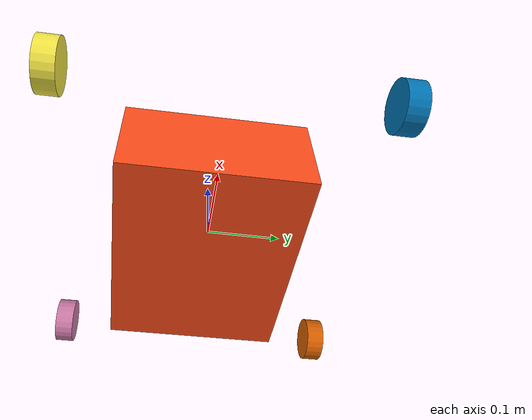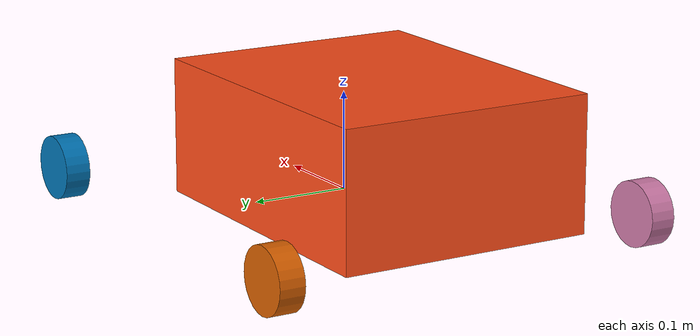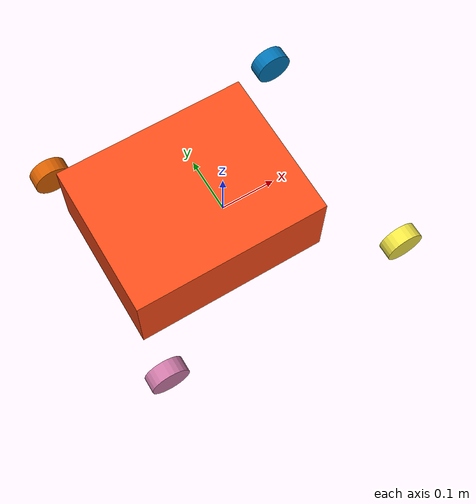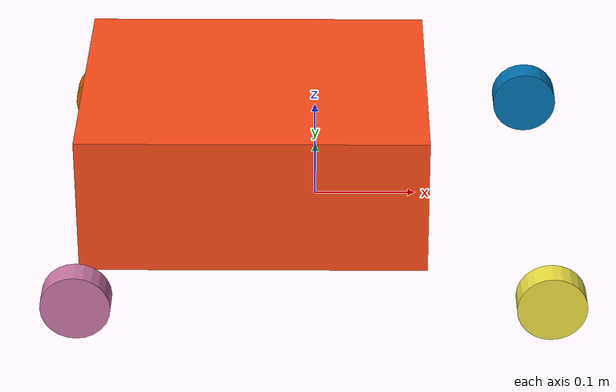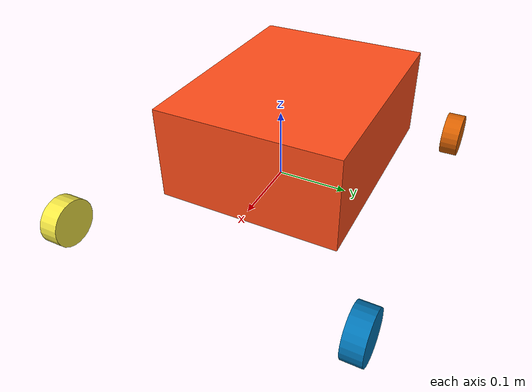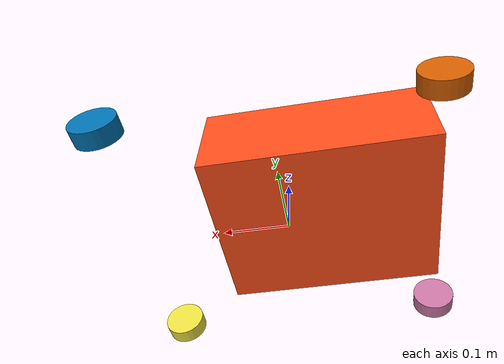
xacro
<?xml version="1.0"?>
<robot xmlns:xacro="http://www.ros.org/wiki/xacro"  name="robot">

    <xacro:property name="chassis_length" value="0.335"/>
    <xacro:property name="chassis_width" value="0.265"/>
    <xacro:property name="chassis_height" value="0.138"/>
    <xacro:property name="chassis_mass" value="1.0"/>

      <!-- Wheel parameters -->
      <xacro:property name="wheel_offset_x" value="0.226"/>
      <xacro:property name="wheel_offset_y" value="0.1485"/>
      <xacro:property name="wheel_offset_z" value="0.01"/>

      <!-- Constants -->
      <xacro:property name="PI" value="3.1415926535897931" />
      <xacro:property name="wheel_radius" value="0.033"/>
      <xacro:property name="wheel_height" value="0.026"/>
      <xacro:property name="wheel_mass" value="0.05"/>
      <!-- Simple Macro to calculate inertia -->
      <xacro:macro name="cylinder_inertia" params="m r h">
          <inertia  ixx="${m*(3*r*r+h*h)/12}" ixy = "0" ixz = "0"
                  iyy="${m*r*r/2}" iyz = "0"
                  izz="${m*(3*r*r+h*h)/12}" />
      </xacro:macro>

    <material name="white">
        <color rgba="1 1 1 1" />
    </material>

    <material name="orange">
        <color rgba="1 0.3 0.1 1"/>
    </material>

    <material name="blue">
        <color rgba="0.2 0.2 1 1"/>
    </material>

    <material name="black">
        <color rgba="0 0 0 1"/>
    </material>

    <material name="red">
        <color rgba="1 0 0 1"/>
    </material>

     <!-- BASE LINK -->

     <link name="base_link">

     </link>

     <!-- BASE_FOOTPRINT LINK -->

     <joint name="base_footprint_joint" type="fixed">
         <parent link="base_link"/>
         <child link="base_footprint"/>
         <origin xyz="0 0 0" rpy="0 0 0"/>
     </joint>

     <link name="base_footprint">
     </link>

     <!-- CHASSIS LINK -->

    <joint name="chassis_joint" type="fixed">
        <parent link="base_link"/>
        <child link="chassis"/>
        <origin xyz="${-wheel_offset_x} 0 ${-wheel_offset_z}"/>
    </joint>

    <link name="chassis">
        <visual>
            <origin xyz="${chassis_length/2} 0 ${chassis_height/2}"/>
            <geometry>
                <box size="${chassis_length} ${chassis_width} ${chassis_height}"/>
            </geometry>
            <material name="orange"/>
        </visual>
        <collision>
            <origin xyz="${chassis_length/2} 0 ${chassis_height/2}"/>
            <geometry>
                <box size="${chassis_length} ${chassis_width} ${chassis_height}"/>
            </geometry>
        </collision>

    </link>

    <gazebo reference="chassis">
        <material>Gazebo/Orange</material>
    </gazebo>

     <!-- WHEEL LINK -->

     <xacro:macro name="omni_wheel" params="prefix parent *origin reflect">

    <link name="${prefix}_wheel_link">
      <visual>
            <origin xyz="0 0 0" rpy="${PI/2} 0 0" />
            <geometry>
                <cylinder length="${wheel_height}" radius="${wheel_radius}" />
            </geometry>
      </visual>

      <collision>
				<origin xyz="0 0 0" rpy="${PI/2} 0 0" />
        <geometry>
					<cylinder length="${wheel_height}" radius="${wheel_radius}" />
        </geometry>
      </collision>

      <inertial>
        <mass value="${wheel_mass}" />
        <origin xyz="0 0 0" />
        <cylinder_inertia  m="${wheel_mass}" r="${wheel_radius}" h="${wheel_height}" />
      </inertial>
    </link>

    <joint name="${prefix}_wheel_joint" type="continuous">
      <parent link="${parent}"/>
      <child link="${prefix}_wheel_link"/>
      <xacro:insert_block name="origin" />
      <axis xyz="0 1 0" rpy="0 0 0" />
      <limit effort="100" velocity="100"/>
      <joint_properties damping="0.0" friction="0.0"/>
    </joint>

    <gazebo reference="${prefix}_wheel_link">
		<mu1 value="1.0"/>
		<mu2 value="1.0"/>
		<kp value="10000000.0" />
		<kd value="1.0" />
		<fdir1 value="1 0 0"/>
        <turnGravityOff>false</turnGravityOff>
    </gazebo>

  </xacro:macro>

    <!-- Wheel parameters -->
	<xacro:property name="wheel_offset_x" value="0.2225" />    <!-- x,y,z in translation from base_link to the center of the wheel -->
	<xacro:property name="wheel_offset_y" value="0.2045" />
	<xacro:property name="wheel_offset_z" value="0.0" />

	<xacro:macro name="robot">

		<xacro:omni_wheel prefix="summit_front_right" parent="base_link" reflect="false">
			<origin xyz="${wheel_offset_x} -${wheel_offset_y} ${wheel_offset_z}" rpy="0 0 0"/>
		</xacro:omni_wheel>

		<xacro:omni_wheel prefix="summit_front_left" parent="base_link" reflect="true">
			<origin xyz="${wheel_offset_x} ${wheel_offset_y} ${wheel_offset_z}" rpy="0 0 0"/>
		</xacro:omni_wheel>

		<xacro:omni_wheel prefix="summit_back_left" parent="base_link" reflect="true">
			<origin xyz="-${wheel_offset_x} ${wheel_offset_y} ${wheel_offset_z}" rpy="0 0 0"/>
		</xacro:omni_wheel>

		<xacro:omni_wheel prefix="summit_back_right" parent="base_link" reflect="false">
			<origin xyz="-${wheel_offset_x} -${wheel_offset_y} ${wheel_offset_z}" rpy="0 0 0"/>
		</xacro:omni_wheel>

   </xacro:macro>

   <xacro:robot/>

</robot>
